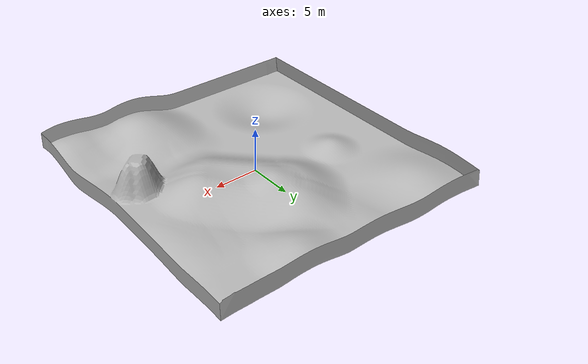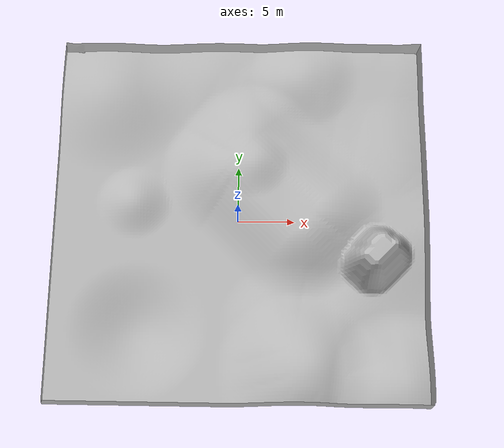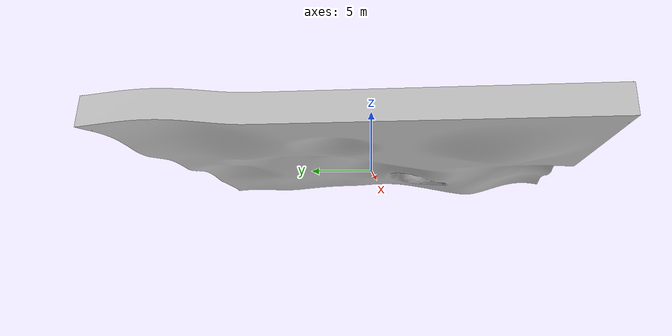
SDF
<?xml version="1.0"?>
<sdf version="1.4">
  <model name="map_yewai">
    <static>true</static>
    <link name="map_link">
      <pose>0 0 0 0 0 0</pose>
      <collision name="collision">
        <geometry>
          <mesh>
            <uri>model://map_yewai/meshes/map_yewai.dae</uri>
            <scale>1.8 1.8 2</scale>
          </mesh>
        </geometry>
      </collision>
      <visual name="visual">
        <geometry>
          <mesh>
            <uri>model://map_yewai/meshes/map_yewai.dae</uri>
            <scale>1.8 1.8 2</scale>
          </mesh>
        </geometry>
        <material>
          <script>
            <uri>model://map_yewai/materials/scripts/map.material</uri>
            <uri>model://map_yewai/materials/textures/texture.jpg</uri>
            <name>map_yewai/Image</name>
          </script>
        </material>
      </visual>
      <surface>
        <friction>
          <ode>
              <mu>99999999.0</mu>
              <mu2>99999999.0</mu2>
              <fdir1>0 0 0</fdir1>
              <slip1>0</slip1>
              <slip2>0</slip2>
          </ode>
        </friction>
      </surface>
    </link>

  </model>
</sdf>
